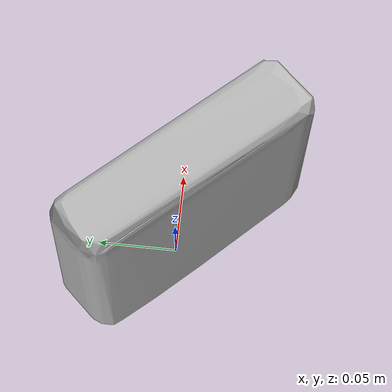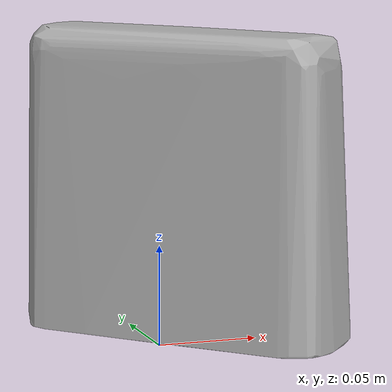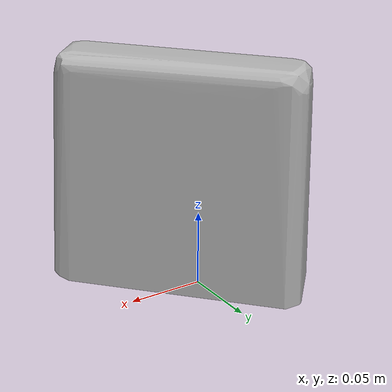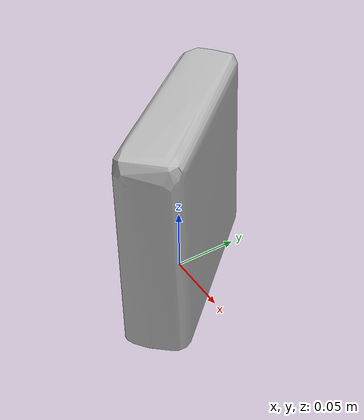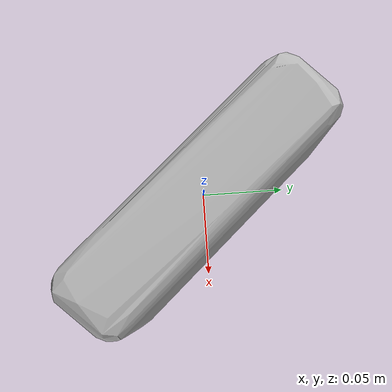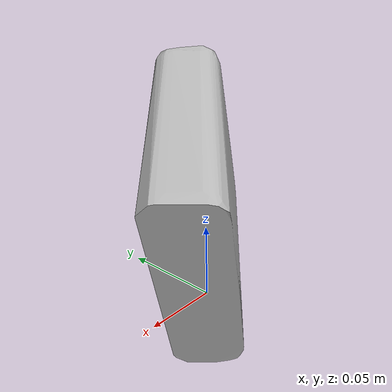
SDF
<?xml version='1.0'?>
<sdf version="1.4">
  <model name="quaker_big_chewy_peanut_butter_chocolate_chip">
    <static>false</static>
    <link name="link">
      <inertial>
        <pose>0.010934477719462274 -0.0037368990749040687 0.07880992597170734 1.6074741344704369 0.01216571270408718 -2.4099927567244714</pose>
        <mass>0.08120765482665663</mass>
        <inertia>
          <ixx>0.00044230556921949726</ixx>
          <ixy>2.5118477254880272e-22</ixy>
          <ixz>4.182927923753458e-20</ixz>
          <iyy>0.0002546819907228595</iyy>
          <iyz>1.862797232881432e-21</iyz>
          <izz>0.00022805295393765038</izz>
        </inertia>
      </inertial>
      <collision name="collision">
        <geometry>
          <mesh>
            <!-- Use a downsampled mesh for collisions -->
            <uri>model:///quaker_big_chewy_peanut_butter_chocolate_chip/quaker_big_chewy_peanut_butter_chocolate_chip_250_collision.obj</uri>
	        </mesh>
        </geometry>
        <surface>
      </surface>
      </collision>
      <visual name="visual">
        <geometry>
          <mesh>
            <uri>model:///quaker_big_chewy_peanut_butter_chocolate_chip/optimized_tsdf_texture_mapped_mesh.obj</uri>
	        </mesh>
        </geometry>
        <material>
          <script>
            <uri>model:///quaker_big_chewy_peanut_butter_chocolate_chip/quaker_big_chewy_peanut_butter_chocolate_chip.material</uri>
            <name>quaker_big_chewy_peanut_butter_chocolate_chip</name>
          </script>
        </material>
      </visual>
    </link>
  </model>
</sdf>
